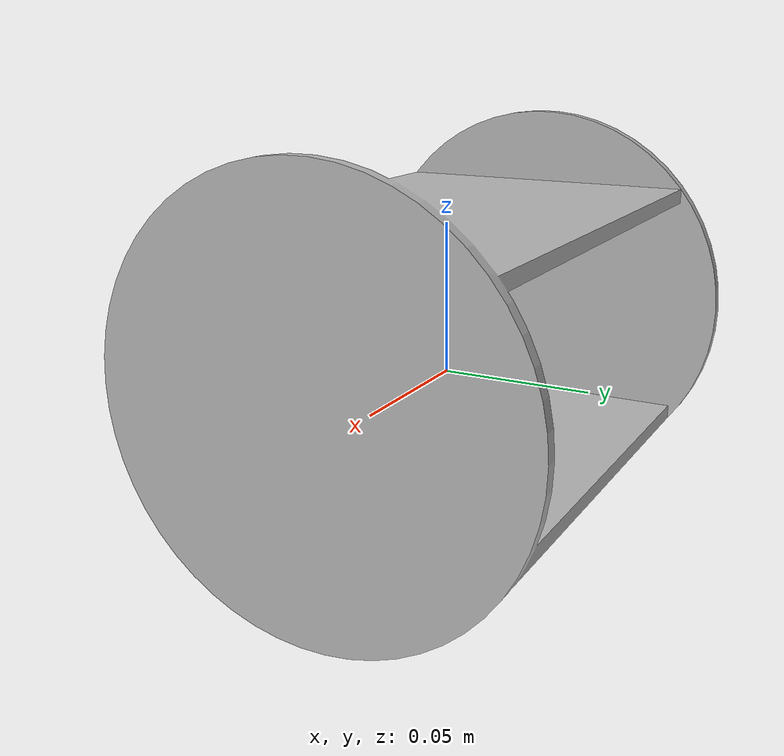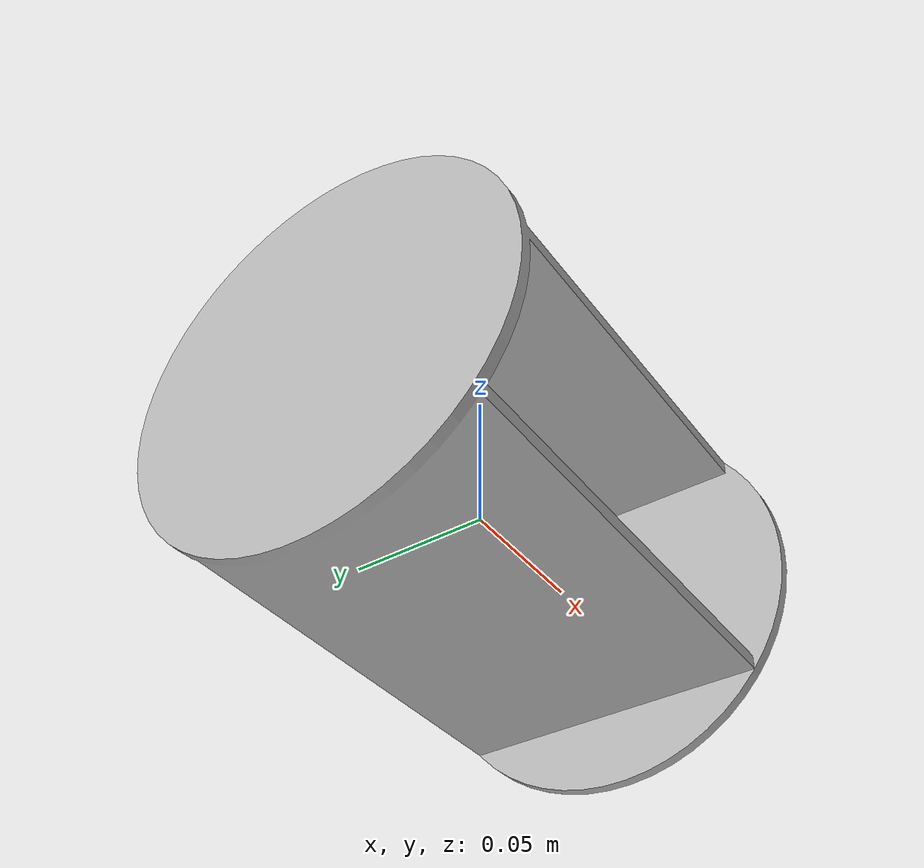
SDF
<?xml version='1.0'?>
<sdf version='1.4'>
  <model name="asb">
  <static>true</static>

  <link name='base_link'>
            <pose>0 0 .010 0 0 0</pose>
          <inertial>
            <inertia>
                <ixx>2.6441344E-7</ixx>
                <ixy>-4.078209E-9</ixy>
                <ixz>1.36947056E-8</ixz>
                <iyy>7.816956416E-6</iyy>
                <iyz>1.3423788E-8</iyz>
                <izz>7.169554432E-6</izz>
            </inertia>
            <mass>3.0</mass>
         </inertial>

            <collision name='collision'>
              <geometry>
                <mesh>
                 <uri>model://home/adil/sim_ws/src/gazebo_sim/meshes/base_link.dae</uri>
                </mesh>
              </geometry>
            </collision>

            <visual name='visual'>
              <geometry>
                <mesh>
                 <uri>model://home/adil/sim_ws/src/gazebo_sim/meshes/base_link.dae</uri>
                </mesh>
              </geometry>
            </visual>
          </link>
  </model>
</sdf>
